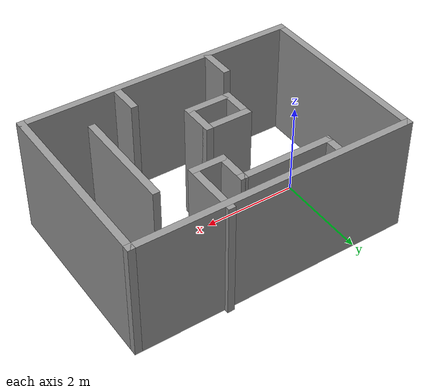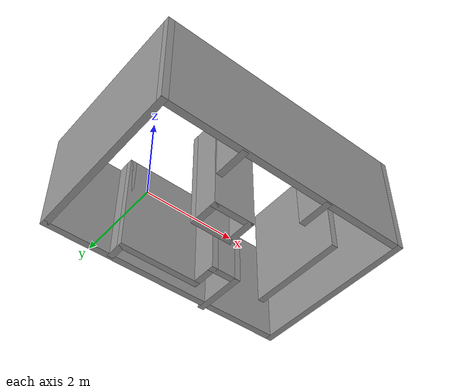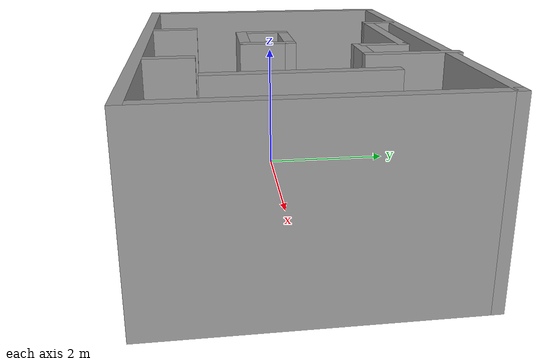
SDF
<?xml version='1.0'?>
<sdf version='1.6'>
  <model name='world2'>
    <pose frame=''>1.86939 0.063125 0 0 -0 0</pose>
    <link name='Wall_11'>
      <collision name='Wall_11_Collision'>
        <geometry>
          <box>
            <size>6 0.15 2.5</size>
          </box>
        </geometry>
        <pose frame=''>0 0 1.25 0 -0 0</pose>
      </collision>
      <visual name='Wall_11_Visual'>
        <pose frame=''>0 0 1.25 0 -0 0</pose>
        <geometry>
          <box>
            <size>6 0.15 2.5</size>
          </box>
        </geometry>
        <material>
          <script>
            <uri>file://media/materials/scripts/gazebo.material</uri>
            <name>Gazebo/Grey</name>
          </script>
          <ambient>1 1 1 1</ambient>
        </material>
        <meta>
          <layer>0</layer>
        </meta>
      </visual>
      <pose frame=''>0 -1.96926 0 0 -0 0</pose>
    </link>
    <link name='Wall_12'>
      <collision name='Wall_12_Collision'>
        <geometry>
          <box>
            <size>4 0.15 2.5</size>
          </box>
        </geometry>
        <pose frame=''>0 0 1.25 0 -0 0</pose>
      </collision>
      <visual name='Wall_12_Visual'>
        <pose frame=''>0 0 1.25 0 -0 0</pose>
        <geometry>
          <box>
            <size>4 0.15 2.5</size>
          </box>
        </geometry>
        <material>
          <script>
            <uri>file://media/materials/scripts/gazebo.material</uri>
            <name>Gazebo/Grey</name>
          </script>
          <ambient>1 1 1 1</ambient>
        </material>
        <meta>
          <layer>0</layer>
        </meta>
      </visual>
      <pose frame=''>2.925 -0.044263 0 0 -0 1.5708</pose>
    </link>
    <link name='Wall_13'>
      <collision name='Wall_13_Collision'>
        <geometry>
          <box>
            <size>6 0.15 2.5</size>
          </box>
        </geometry>
        <pose frame=''>0 0 1.25 0 -0 0</pose>
      </collision>
      <visual name='Wall_13_Visual'>
        <pose frame=''>0 0 1.25 0 -0 0</pose>
        <geometry>
          <box>
            <size>6 0.15 2.5</size>
          </box>
        </geometry>
        <material>
          <script>
            <uri>file://media/materials/scripts/gazebo.material</uri>
            <name>Gazebo/Grey</name>
          </script>
          <ambient>1 1 1 1</ambient>
        </material>
        <meta>
          <layer>0</layer>
        </meta>
      </visual>
      <pose frame=''>0 1.88074 0 0 -0 3.14159</pose>
    </link>
    <link name='Wall_16'>
      <collision name='Wall_16_Collision'>
        <geometry>
          <box>
            <size>0.75 0.15 2.5</size>
          </box>
        </geometry>
        <pose frame=''>0 0 1.25 0 -0 0</pose>
      </collision>
      <visual name='Wall_16_Visual'>
        <pose frame=''>0 0 1.25 0 -0 0</pose>
        <geometry>
          <box>
            <size>0.75 0.15 2.5</size>
          </box>
        </geometry>
        <material>
          <script>
            <uri>file://media/materials/scripts/gazebo.material</uri>
            <name>Gazebo/Grey</name>
          </script>
          <ambient>1 1 1 1</ambient>
        </material>
        <meta>
          <layer>0</layer>
        </meta>
      </visual>
      <pose frame=''>-1.09788 -1.62341 0 0 -0 1.5708</pose>
    </link>
    <link name='Wall_18'>
      <collision name='Wall_18_Collision'>
        <geometry>
          <box>
            <size>2.25 0.15 2.5</size>
          </box>
        </geometry>
        <pose frame=''>0 0 1.25 0 -0 0</pose>
      </collision>
      <visual name='Wall_18_Visual'>
        <pose frame=''>0 0 1.25 0 -0 0</pose>
        <geometry>
          <box>
            <size>2.25 0.15 2.5</size>
          </box>
        </geometry>
        <material>
          <script>
            <uri>file://media/materials/scripts/gazebo.material</uri>
            <name>Gazebo/Grey</name>
          </script>
          <ambient>1 1 1 1</ambient>
        </material>
        <meta>
          <layer>0</layer>
        </meta>
      </visual>
      <pose frame=''>1.89097 -0.103586 0 0 -0 -1.5708</pose>
    </link>
    <link name='Wall_22'>
      <collision name='Wall_22_Collision'>
        <geometry>
          <box>
            <size>0.75 0.15 2.5</size>
          </box>
        </geometry>
        <pose frame=''>0 0 1.25 0 -0 0</pose>
      </collision>
      <visual name='Wall_22_Visual'>
        <pose frame=''>0 0 1.25 0 -0 0</pose>
        <geometry>
          <box>
            <size>0.75 0.15 2.5</size>
          </box>
        </geometry>
        <material>
          <script>
            <uri>file://media/materials/scripts/gazebo.material</uri>
            <name>Gazebo/Grey</name>
          </script>
          <ambient>1 1 1 1</ambient>
        </material>
        <meta>
          <layer>0</layer>
        </meta>
      </visual>
      <pose frame=''>-0.674679 -0.305786 0 0 -0 -1.5708</pose>
    </link>
    <link name='Wall_23'>
      <collision name='Wall_23_Collision'>
        <geometry>
          <box>
            <size>1 0.15 2.5</size>
          </box>
        </geometry>
        <pose frame=''>0 0 1.25 0 -0 0</pose>
      </collision>
      <visual name='Wall_23_Visual'>
        <pose frame=''>0 0 1.25 0 -0 0</pose>
        <geometry>
          <box>
            <size>1 0.15 2.5</size>
          </box>
        </geometry>
        <material>
          <script>
            <uri>file://media/materials/scripts/gazebo.material</uri>
            <name>Gazebo/Grey</name>
          </script>
          <ambient>1 1 1 1</ambient>
        </material>
        <meta>
          <layer>0</layer>
        </meta>
      </visual>
      <pose frame=''>-0.249679 -0.605787 0 0 -0 0</pose>
    </link>
    <link name='Wall_24'>
      <collision name='Wall_24_Collision'>
        <geometry>
          <box>
            <size>0.75 0.15 2.5</size>
          </box>
        </geometry>
        <pose frame=''>0 0 1.25 0 -0 0</pose>
      </collision>
      <visual name='Wall_24_Visual'>
        <pose frame=''>0 0 1.25 0 -0 0</pose>
        <geometry>
          <box>
            <size>0.75 0.15 2.5</size>
          </box>
        </geometry>
        <material>
          <script>
            <uri>file://media/materials/scripts/gazebo.material</uri>
            <name>Gazebo/Grey</name>
          </script>
          <ambient>1 1 1 1</ambient>
        </material>
        <meta>
          <layer>0</layer>
        </meta>
      </visual>
      <pose frame=''>0.175321 -0.305786 0 0 -0 1.5708</pose>
    </link>
    <link name='Wall_25'>
      <collision name='Wall_25_Collision'>
        <geometry>
          <box>
            <size>1 0.15 2.5</size>
          </box>
        </geometry>
        <pose frame=''>0 0 1.25 0 -0 0</pose>
      </collision>
      <visual name='Wall_25_Visual'>
        <pose frame=''>0 0 1.25 0 -0 0</pose>
        <geometry>
          <box>
            <size>1 0.15 2.5</size>
          </box>
        </geometry>
        <material>
          <script>
            <uri>file://media/materials/scripts/gazebo.material</uri>
            <name>Gazebo/Grey</name>
          </script>
          <ambient>1 1 1 1</ambient>
        </material>
        <meta>
          <layer>0</layer>
        </meta>
      </visual>
      <pose frame=''>-0.249679 -0.005786 0 0 -0 3.14159</pose>
    </link>
    <link name='Wall_27'>
      <collision name='Wall_27_Collision'>
        <geometry>
          <box>
            <size>0.5 0.15 2.5</size>
          </box>
        </geometry>
        <pose frame=''>0 0 1.25 0 -0 0</pose>
      </collision>
      <visual name='Wall_27_Visual'>
        <pose frame=''>0 0 1.25 0 -0 0</pose>
        <geometry>
          <box>
            <size>0.5 0.15 2.5</size>
          </box>
        </geometry>
        <material>
          <script>
            <uri>file://media/materials/scripts/gazebo.material</uri>
            <name>Gazebo/Grey</name>
          </script>
          <ambient>1 1 1 1</ambient>
        </material>
        <meta>
          <layer>0</layer>
        </meta>
      </visual>
      <pose frame=''>-1.40205 1.64426 0 0 -0 -1.5708</pose>
    </link>
    <link name='Wall_28'>
      <collision name='Wall_28_Collision'>
        <geometry>
          <box>
            <size>2 0.15 2.5</size>
          </box>
        </geometry>
        <pose frame=''>0 0 1.25 0 -0 0</pose>
      </collision>
      <visual name='Wall_28_Visual'>
        <pose frame=''>0 0 1.25 0 -0 0</pose>
        <geometry>
          <box>
            <size>2 0.15 2.5</size>
          </box>
        </geometry>
        <material>
          <script>
            <uri>file://media/materials/scripts/gazebo.material</uri>
            <name>Gazebo/Grey</name>
          </script>
          <ambient>1 1 1 1</ambient>
        </material>
        <meta>
          <layer>0</layer>
        </meta>
      </visual>
      <pose frame=''>-0.477054 1.46926 0 0 -0 0</pose>
    </link>
    <link name='Wall_29'>
      <collision name='Wall_29_Collision'>
        <geometry>
          <box>
            <size>0.75 0.15 2.5</size>
          </box>
        </geometry>
        <pose frame=''>0 0 1.25 0 -0 0</pose>
      </collision>
      <visual name='Wall_29_Visual'>
        <pose frame=''>0 0 1.25 0 -0 0</pose>
        <geometry>
          <box>
            <size>0.75 0.15 2.5</size>
          </box>
        </geometry>
        <material>
          <script>
            <uri>file://media/materials/scripts/gazebo.material</uri>
            <name>Gazebo/Grey</name>
          </script>
          <ambient>1 1 1 1</ambient>
        </material>
        <meta>
          <layer>0</layer>
        </meta>
      </visual>
      <pose frame=''>0.447946 1.16926 0 0 -0 -1.5708</pose>
    </link>
    <link name='Wall_30'>
      <collision name='Wall_30_Collision'>
        <geometry>
          <box>
            <size>0.75 0.15 2.5</size>
          </box>
        </geometry>
        <pose frame=''>0 0 1.25 0 -0 0</pose>
      </collision>
      <visual name='Wall_30_Visual'>
        <pose frame=''>0 0 1.25 0 -0 0</pose>
        <geometry>
          <box>
            <size>0.75 0.15 2.5</size>
          </box>
        </geometry>
        <material>
          <script>
            <uri>file://media/materials/scripts/gazebo.material</uri>
            <name>Gazebo/Grey</name>
          </script>
          <ambient>1 1 1 1</ambient>
        </material>
        <meta>
          <layer>0</layer>
        </meta>
      </visual>
      <pose frame=''>0.747946 0.869264 0 0 -0 0</pose>
    </link>
    <link name='Wall_31'>
      <collision name='Wall_31_Collision'>
        <geometry>
          <box>
            <size>1.25 0.15 2.5</size>
          </box>
        </geometry>
        <pose frame=''>0 0 1.25 0 -0 0</pose>
      </collision>
      <visual name='Wall_31_Visual'>
        <pose frame=''>0 0 1.25 0 -0 0</pose>
        <geometry>
          <box>
            <size>1.25 0.15 2.5</size>
          </box>
        </geometry>
        <material>
          <script>
            <uri>file://media/materials/scripts/gazebo.material</uri>
            <name>Gazebo/Grey</name>
          </script>
          <ambient>1 1 1 1</ambient>
        </material>
        <meta>
          <layer>0</layer>
        </meta>
      </visual>
      <pose frame=''>1.04795 1.41926 0 0 -0 1.5708</pose>
    </link>
    <link name='Wall_34'>
      <collision name='Wall_34_Collision'>
        <geometry>
          <box>
            <size>0.75 0.15 2.5</size>
          </box>
        </geometry>
        <pose frame=''>0 0 1.25 0 -0 0</pose>
      </collision>
      <visual name='Wall_34_Visual'>
        <pose frame=''>0 0 1.25 0 -0 0</pose>
        <geometry>
          <box>
            <size>0.75 0.15 2.5</size>
          </box>
        </geometry>
        <material>
          <script>
            <uri>file://media/materials/scripts/gazebo.material</uri>
            <name>Gazebo/Grey</name>
          </script>
          <ambient>1 1 1 1</ambient>
        </material>
        <meta>
          <layer>0</layer>
        </meta>
      </visual>
      <pose frame=''>0.965221 -1.63664 0 0 -0 1.5708</pose>
    </link>
    <link name='Wall_9'>
      <collision name='Wall_9_Collision'>
        <geometry>
          <box>
            <size>4 0.15 2.5</size>
          </box>
        </geometry>
        <pose frame=''>0 0 1.25 0 -0 0</pose>
      </collision>
      <visual name='Wall_9_Visual'>
        <pose frame=''>0 0 1.25 0 -0 0</pose>
        <geometry>
          <box>
            <size>4 0.15 2.5</size>
          </box>
        </geometry>
        <material>
          <script>
            <uri>file://media/materials/scripts/gazebo.material</uri>
            <name>Gazebo/Grey</name>
          </script>
          <ambient>1 1 1 1</ambient>
        </material>
        <meta>
          <layer>0</layer>
        </meta>
      </visual>
      <pose frame=''>-2.925 -0.044263 0 0 -0 1.5708</pose>
    </link>
    <static>1</static>
  </model>
</sdf>
